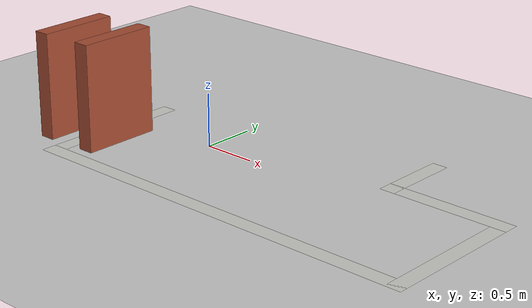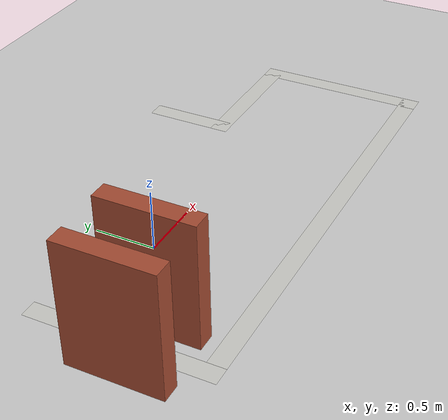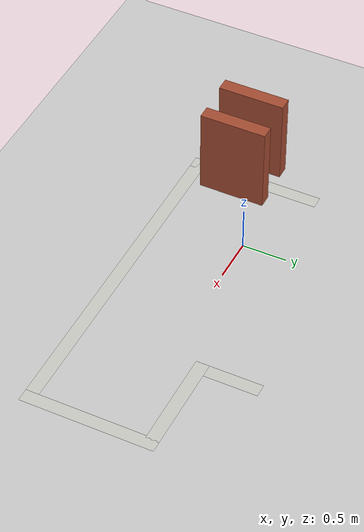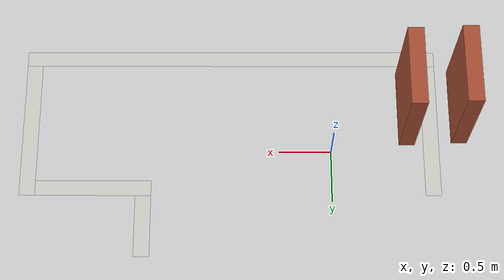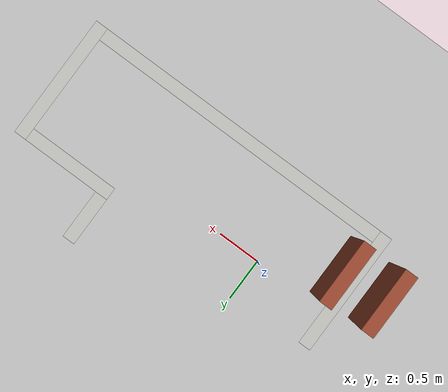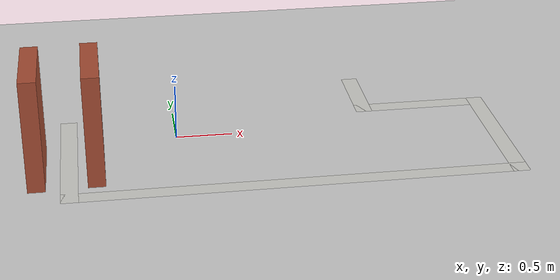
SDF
<?xml version="1.0" ?>

<sdf version="1.5">
	<world name="default">
		<!-- A global light source -->
		<include>
			<uri>model://sun</uri>
		</include>

		<!-- A ground plane -->
		<include>
			<uri>model://ground_plane</uri>
		</include>

      		<!-- Our custom model -->
		<include>
			<uri>model://sample</uri>
		</include>

	</world>
</sdf>

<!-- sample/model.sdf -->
<sdf version='1.6'>
  <model name='sample'>
    <pose frame=''>0.8295 -0.013 0 0 -0 0</pose>
    <link name='Wall_13'>
      <collision name='Wall_13_Collision'>
        <geometry>
          <box>
            <size>1.5 0.15 0</size>
          </box>
        </geometry>
        <pose frame=''>0 0 0 0 -0 0</pose>
      </collision>
      <visual name='Wall_13_Visual'>
        <pose frame=''>0 0 0 0 -0 0</pose>
        <geometry>
          <box>
            <size>1.5 0.15 0</size>
          </box>
        </geometry>
        <material>
          <script>
            <uri>file://media/materials/scripts/gazebo.material</uri>
            <name>Gazebo/CeilingTiled</name>
          </script>
          <ambient>0.996078 0.47451 0.0196078 1</ambient>
        </material>
        <meta>
          <layer>0</layer>
        </meta>
      </visual>
      <pose frame=''>2.0595 -0.3 0 0 -0 1.5708</pose>
    </link>
    <link name='Wall_14'>
      <collision name='Wall_14_Collision'>
        <geometry>
          <box>
            <size>1.25 0.15 0</size>
          </box>
        </geometry>
        <pose frame=''>0 0 0 0 -0 0</pose>
      </collision>
      <visual name='Wall_14_Visual'>
        <pose frame=''>0 0 0 0 -0 0</pose>
        <geometry>
          <box>
            <size>1.25 0.15 0</size>
          </box>
        </geometry>
        <material>
          <script>
            <uri>file://media/materials/scripts/gazebo.material</uri>
            <name>Gazebo/CeilingTiled</name>
          </script>
          <ambient>1 1 1 1</ambient>
        </material>
        <meta>
          <layer>0</layer>
        </meta>
      </visual>
      <pose frame=''>1.5095 0.375 0 0 -0 3.14159</pose>
    </link>
    <link name='Wall_15'>
      <collision name='Wall_15_Collision'>
        <geometry>
          <box>
            <size>0.75 0.15 0</size>
          </box>
        </geometry>
        <pose frame=''>0 0 0 0 -0 0</pose>
      </collision>
      <visual name='Wall_15_Visual'>
        <pose frame=''>0 0 0 0 -0 0</pose>
        <geometry>
          <box>
            <size>0.75 0.15 0</size>
          </box>
        </geometry>
        <material>
          <script>
            <uri>file://media/materials/scripts/gazebo.material</uri>
            <name>Gazebo/CeilingTiled</name>
          </script>
          <ambient>1 1 1 1</ambient>
        </material>
        <meta>
          <layer>0</layer>
        </meta>
      </visual>
      <pose frame=''>0.9595 0.675 0 0 -0 1.5708</pose>
    </link>
    <link name='Wall_19'>
      <collision name='Wall_19_Collision'>
        <geometry>
          <box>
            <size>0.75 0.15 1</size>
          </box>
        </geometry>
        <pose frame=''>0 0 0.5 0 -0 0</pose>
      </collision>
      <visual name='Wall_19_Visual'>
        <pose frame=''>0 0 0.5 0 -0 0</pose>
        <geometry>
          <box>
            <size>0.75 0.15 1</size>
          </box>
        </geometry>
        <material>
          <script>
            <uri>file://media/materials/scripts/gazebo.material</uri>
            <name>Gazebo/Bricks</name>
          </script>
          <ambient>1 1 1 1</ambient>
        </material>
        <meta>
          <layer>0</layer>
        </meta>
      </visual>
      <pose frame=''>-2.0595 -0.461 0 0 -0 1.5708</pose>
    </link>
    <link name='Wall_22'>
      <collision name='Wall_22_Collision'>
        <geometry>
          <box>
            <size>0.75 0.15 1</size>
          </box>
        </geometry>
        <pose frame=''>0 0 0.5 0 -0 0</pose>
      </collision>
      <visual name='Wall_22_Visual'>
        <pose frame=''>0 0 0.5 0 -0 0</pose>
        <geometry>
          <box>
            <size>0.75 0.15 1</size>
          </box>
        </geometry>
        <material>
          <script>
            <uri>file://media/materials/scripts/gazebo.material</uri>
            <name>Gazebo/Bricks</name>
          </script>
          <ambient>1 1 1 1</ambient>
        </material>
        <meta>
          <layer>0</layer>
        </meta>
      </visual>
      <pose frame=''>-1.5575 -0.44 0 0 -0 -1.5708</pose>
    </link>
    <link name='Wall_7'>
      <collision name='Wall_7_Collision'>
        <geometry>
          <box>
            <size>1.5 0.15 0</size>
          </box>
        </geometry>
        <pose frame=''>0 0 0 0 -0 0</pose>
      </collision>
      <visual name='Wall_7_Visual'>
        <pose frame=''>0 0 0 0 -0 0</pose>
        <geometry>
          <box>
            <size>1.5 0.15 0</size>
          </box>
        </geometry>
        <material>
          <script>
            <uri>file://media/materials/scripts/gazebo.material</uri>
            <name>Gazebo/CeilingTiled</name>
          </script>
          <ambient>1 1 1 1</ambient>
        </material>
        <meta>
          <layer>0</layer>
        </meta>
      </visual>
      <pose frame=''>-1.7905 -0.3 0 0 -0 -1.5708</pose>
    </link>
    <link name='Wall_8'>
      <collision name='Wall_8_Collision'>
        <geometry>
          <box>
            <size>4 0.15 0</size>
          </box>
        </geometry>
        <pose frame=''>0 0 0 0 -0 0</pose>
      </collision>
      <visual name='Wall_8_Visual'>
        <pose frame=''>0 0 0 0 -0 0</pose>
        <geometry>
          <box>
            <size>4 0.15 0</size>
          </box>
        </geometry>
        <material>
          <script>
            <uri>file://media/materials/scripts/gazebo.material</uri>
            <name>Gazebo/CeilingTiled</name>
          </script>
          <ambient>1 1 1 1</ambient>
        </material>
        <meta>
          <layer>0</layer>
        </meta>
      </visual>
      <pose frame=''>0.1345 -0.975 0 0 -0 0</pose>
    </link>
    <static>1</static>
  </model>
</sdf>
